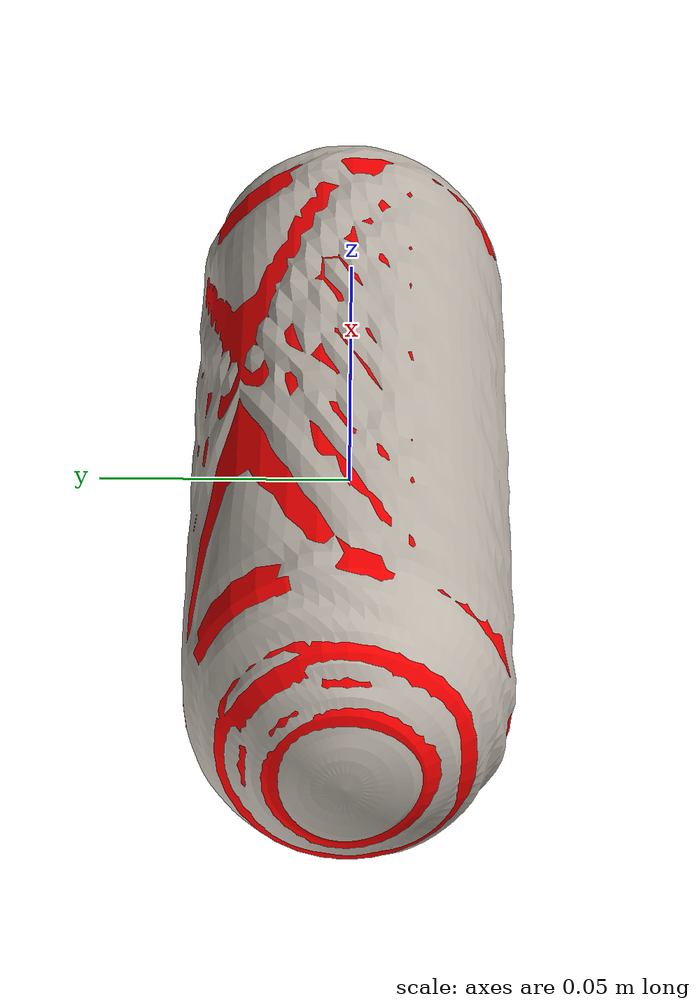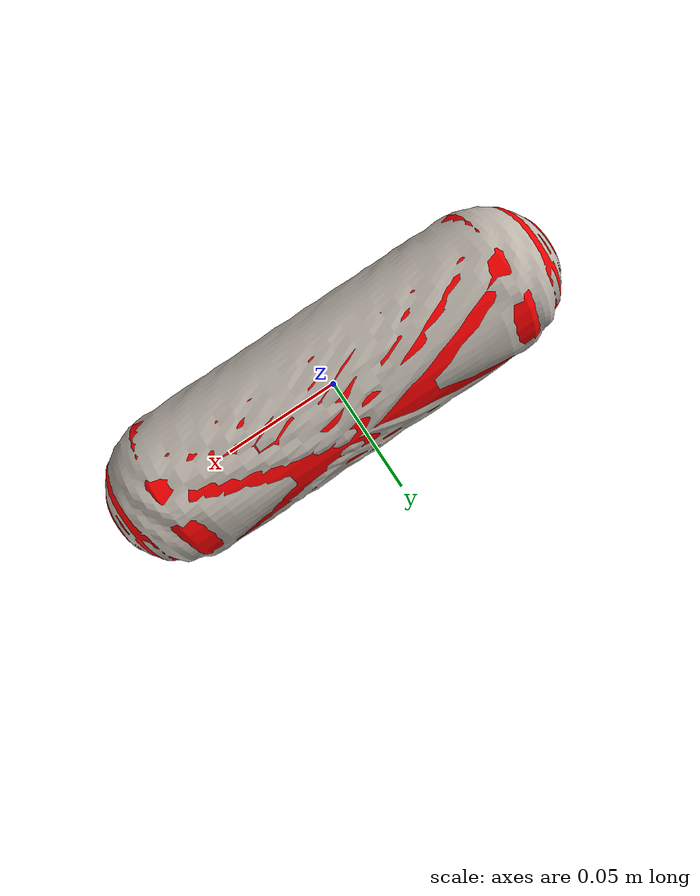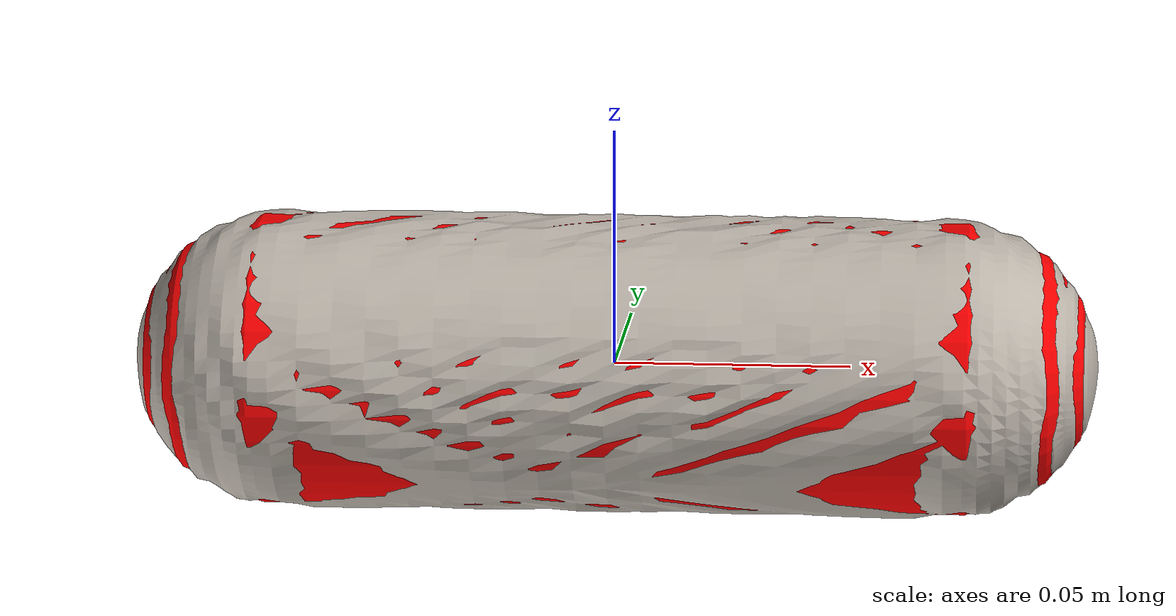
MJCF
<?xml version="1.0" ?>
<mujoco model="cold_cutting_1">
	<compiler meshdir="cold_cutting_1/meshes" texturedir="cold_cutting_1/textures" angle="radian" autolimits="true" balanceinertia="true" boundmass="0.000001" boundinertia="0.000001" inertiafromgeom="false"/>
	<default>
		<default class="cold_cutting_1_visual">
			<geom contype="0" conaffinity="0"/>
		</default>
		<default class="cold_cutting_1_collision">
			<geom rgba="1.0 0.0 0.0 1.0" solimp="0.95 0.99 0.001" solref="0.004 1"/>
		</default>
	</default>
	<asset>
		<mesh name="ColdCuttingMeat" file="obj/ColdCuttingMeat.obj" scale="1.0 1.0 1.0"/>
		<mesh name="ColdCuttingExodermis" file="obj/ColdCuttingExodermis.obj" scale="1.0 1.0 1.0"/>
		<material name="M_ColdCuttingMeat" texture="T_ColdCuttingMeat"/>
		<material name="M_ColdCuttingExodermis" texture="T_ColdCuttingExodermis"/>
		<texture name="T_ColdCuttingMeat" type="2d" file="T_ColdCuttingMeat.png"/>
		<texture name="T_ColdCuttingExodermis" type="2d" file="T_ColdCuttingExodermis.png"/>
	</asset>
	<asset>
		<mesh name="UCX_ColdCutting_001" file="stl/UCX_ColdCutting_001.stl" />
	</asset>
	<worldbody>
		<body name="cold_cutting_1" pos="0.0 0.0 0.0" quat="1.0 0.0 0.0 0.0">
			<freejoint />
			<geom name="UCX_ColdCutting_001" type="mesh" mesh="UCX_ColdCutting_001" class="cold_cutting_1_collision"/>
			<body name="cold_cutting_meat" pos="0.0 0.0 0.0" quat="1.0 0.0 0.0 0.0">
				<inertial mass="0.5316651463508606" pos="-1.3047480251771049e-06 -4.2225066863466054e-05 -4.222921052132733e-05" quat="0.9238739609718323 0.3826969563961029 8.981351129477844e-07 -2.013482117035892e-06" diaginertia="0.00023565333685837686 0.0016169100999832153 0.0016169962473213673"/>
				<geom name="ColdCuttingMeat" type="mesh" pos="0.0 0.0 0.0" quat="1.0 0.0 0.0 0.0" mesh="ColdCuttingMeat" material="M_ColdCuttingMeat" class="cold_cutting_1_visual"/>
			</body>
			<body name="cold_cutting_exodermis" pos="0.0 0.0 0.0" quat="1.0 0.0 0.0 0.0">
				<inertial mass="0.029258714988827705" pos="1.9871227152634674e-07 -2.76368828053819e-05 -2.7639065592666157e-05" quat="0.9235755801200867 0.3834163546562195 5.397649260885373e-07 -1.7164622931886697e-06" diaginertia="2.5001927497214638e-05 0.00011326310050208122 0.00011326515959808603"/>
				<geom name="ColdCuttingExodermis" type="mesh" pos="0.0 0.0 0.0" quat="1.0 0.0 0.0 0.0" mesh="ColdCuttingExodermis" material="M_ColdCuttingExodermis" class="cold_cutting_1_visual"/>
			</body>
		</body>
	</worldbody>
	<equality/>
</mujoco>
